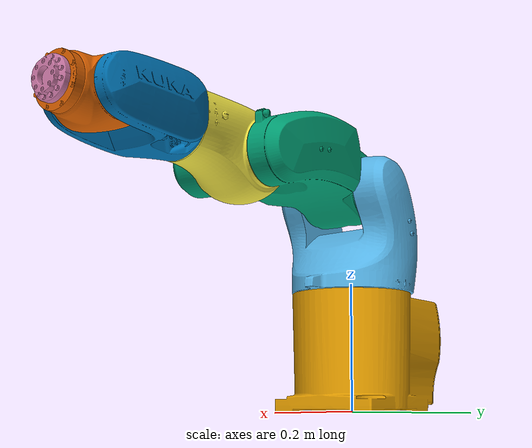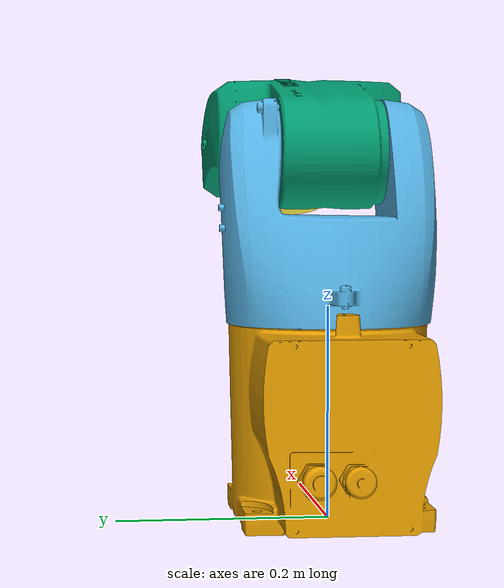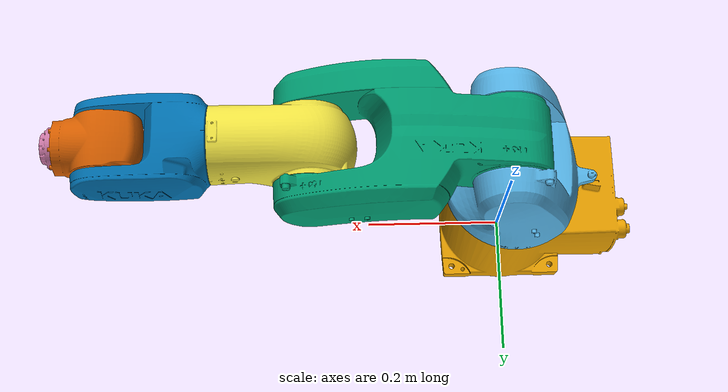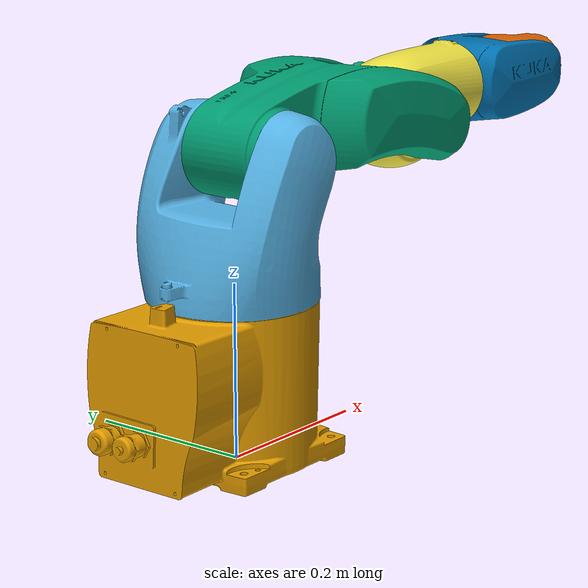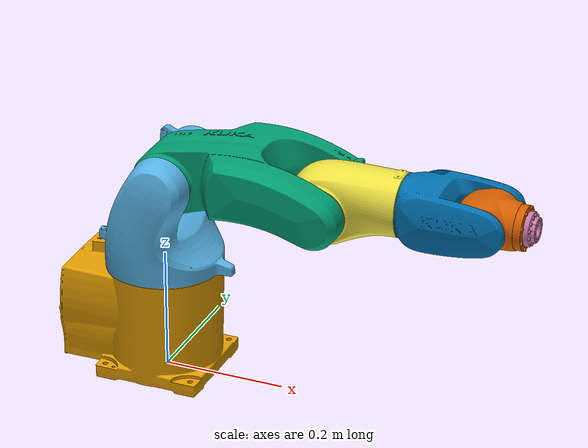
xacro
<?xml version="1.0" ?>
<robot name="kuka_kr3r540" xmlns:xacro="http://wiki.ros.org/xacro">
  <xacro:include filename="$(find acroba_resources)/urdf/kr3r540_macro.xacro"/>
  <xacro:kuka_kr3r540 prefix=""/>
  <link name="world"/>
    <joint name="joint_world" type="fixed">
      <parent link="world"/>
      <child link="base_link"/>
      <origin xyz="0 0 0" rpy="0 0 0"/>
    </joint>
</robot>

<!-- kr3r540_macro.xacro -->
<robot xmlns:xacro="http://wiki.ros.org/xacro">
  <xacro:include filename="$(find acroba_resources)/urdf/kuka_common_materials.xacro"/>

  <xacro:macro name="kuka_kr3r540" params="prefix">
    <link name="${prefix}base_link">
      <visual>
        <origin xyz="0 0 0" rpy="0 0 0" />
        <geometry>
          <mesh filename="package://acroba_resources/meshes/kr3r540/visual/base_link.stl" />
        </geometry>
        <xacro:material_kuka_pedestal />
      </visual>
      <collision>
        <origin xyz="0 0 0" rpy="0 0 0" />
        <geometry>
          <mesh filename="package://acroba_resources/meshes/kr3r540/collision/base_link.stl" />
        </geometry>
      </collision>
    </link>
    <link name="${prefix}link_1">
      <visual>
        <origin xyz="0 0 0" rpy="0 0 0" />
        <geometry>
          <mesh filename="package://acroba_resources/meshes/kr3r540/visual/link_1.stl" />
        </geometry>
        <xacro:material_kuka_ral_pure_white />
      </visual>
      <collision>
        <origin xyz="0 0 0" rpy="0 0 0" />
        <geometry>
          <mesh filename="package://acroba_resources/meshes/kr3r540/collision/link_1.stl" />
        </geometry>
      </collision>
    </link>
    <link name="${prefix}link_2">
      <visual>
        <origin xyz="0 0 0" rpy="0 0 0" />
        <geometry>
          <mesh filename="package://acroba_resources/meshes/kr3r540/visual/link_2.stl" />
        </geometry>
        <xacro:material_kuka_ral_pure_white />
      </visual>
      <collision>
        <origin xyz="0 0 0" rpy="0 0 0" />
        <geometry>
          <mesh filename="package://acroba_resources/meshes/kr3r540/collision/link_2.stl" />
        </geometry>
      </collision>
    </link>
    <link name="${prefix}link_3">
      <visual>
        <origin xyz="0 0 0" rpy="0 0 0" />
        <geometry>
          <mesh filename="package://acroba_resources/meshes/kr3r540/visual/link_3.stl" />
        </geometry>
        <xacro:material_kuka_ral_pure_white />
      </visual>
      <collision>
        <origin xyz="0 0 0" rpy="0 0 0" />
        <geometry>
          <mesh filename="package://acroba_resources/meshes/kr3r540/collision/link_3.stl" />
        </geometry>
      </collision>
    </link>
    <link name="${prefix}link_4">
      <visual>
        <origin xyz="0 0 0" rpy="0 0 0" />
        <geometry>
          <mesh filename="package://acroba_resources/meshes/kr3r540/visual/link_4.stl" />
        </geometry>
        <xacro:material_kuka_ral_pure_white />
      </visual>
      <collision>
        <origin xyz="0 0 0" rpy="0 0 0" />
        <geometry>
          <mesh filename="package://acroba_resources/meshes/kr3r540/collision/link_4.stl" />
        </geometry>
      </collision>
    </link>
    <link name="${prefix}link_5">
      <visual>
        <origin xyz="0 0 0" rpy="0 0 0" />
        <geometry>
          <mesh filename="package://acroba_resources/meshes/kr3r540/visual/link_5.stl" />
        </geometry>
        <xacro:material_kuka_ral_pure_white />
      </visual>
      <collision>
        <origin xyz="0 0 0" rpy="0 0 0" />
        <geometry>
          <mesh filename="package://acroba_resources/meshes/kr3r540/collision/link_5.stl" />
        </geometry>
      </collision>
    </link>
    <link name="${prefix}link_6">
      <visual>
        <origin xyz="0 0 0" rpy="0 0 0" />
        <geometry>
          <mesh filename="package://acroba_resources/meshes/kr3r540/visual/link_6.stl" />
        </geometry>
        <xacro:material_kuka_pedestal />
      </visual>
      <collision>
        <origin xyz="0 0 0" rpy="0 0 0" />
        <geometry>
          <mesh filename="package://acroba_resources/meshes/kr3r540/collision/link_6.stl" />
        </geometry>
      </collision>
    </link>

    <!-- Following REP199, this frame shall be use to attach EEF or other equipment -->
    <link name="${prefix}flange" />

    <joint name="${prefix}joint_a1" type="revolute">
      <origin xyz="0 0 0.345" rpy="0 0 0"/>
      <parent link="${prefix}base_link"/>
      <child link="${prefix}link_1"/>
      <axis xyz="0 0 -1"/>
      <limit lower="${radians(-170)}" upper="${radians(170)}" effort="0" velocity="${radians(530)}"/>
    </joint>
    <joint name="${prefix}joint_a2" type="revolute">
      <origin xyz="0.020 0 0" rpy="0 0 0"/>
      <parent link="${prefix}link_1"/>
      <child link="${prefix}link_2"/>
      <axis xyz="0 1 0"/>
      <limit lower="${radians(-170)}" upper="${radians(50)}" effort="0" velocity="${radians(529)}"/>
    </joint>
    <joint name="${prefix}joint_a3" type="revolute">
      <origin xyz="0.260 0 0" rpy="0 0 0"/>
      <parent link="${prefix}link_2"/>
      <child link="${prefix}link_3"/>
      <axis xyz="0 1 0"/>
      <limit lower="${radians(-110)}" upper="${radians(155)}" effort="0" velocity="${radians(538)}"/>
    </joint>
    <joint name="${prefix}joint_a4" type="revolute">
      <origin xyz="0 0 0.020" rpy="0 0 0"/>
      <parent link="${prefix}link_3"/>
      <child link="${prefix}link_4"/>
      <axis xyz="-1 0 0"/>
      <limit lower="${radians(-175)}" upper="${radians(175)}" effort="0" velocity="${radians(600)}"/>
    </joint>
    <joint name="${prefix}joint_a5" type="revolute">
      <origin xyz="0.260 0 0" rpy="0 0 0"/>
      <parent link="${prefix}link_4"/>
      <child link="${prefix}link_5"/>
      <axis xyz="0 1 0"/>
      <limit lower="${radians(-120)}" upper="${radians(120)}" effort="0" velocity="${radians(600)}"/>
    </joint>
    <joint name="${prefix}joint_a6" type="revolute">
      <origin xyz="0.075 0 0" rpy="0 0 0"/>
      <parent link="${prefix}link_5"/>
      <child link="${prefix}link_6"/>
      <axis xyz="-1 0 0"/>
      <limit lower="${radians(-350)}" upper="${radians(350)}" effort="0" velocity="${radians(800)}"/>
    </joint>
    <joint name="${prefix}joint_a6-tool0" type="fixed">
      <parent link="${prefix}link_6"/>
      <child link="${prefix}flange"/>
      <origin xyz="0 0 0" rpy="0 0 0"/>
    </joint>

    <!-- ROS base_link to KUKA $ROBROOT coordinate system transform -->
    <link name="${prefix}base" />
    <joint name="${prefix}base_link-base" type="fixed">
      <origin xyz="0 0 0" rpy="0 0 0"/>
      <parent link="${prefix}base_link"/>
      <child link="${prefix}base"/>
    </joint>

    <!-- This frame corresponds to the $TOOL coordinate system in KUKA KRC controllers -->
    <link name="${prefix}tool0" />
    <joint name="${prefix}flange-tool0" type="fixed">
      <parent link="${prefix}flange"/>
      <child link="${prefix}tool0"/>
      <origin xyz="0 0 0" rpy="0 ${radians(90)} 0"/>
    </joint>
  </xacro:macro>
</robot>
